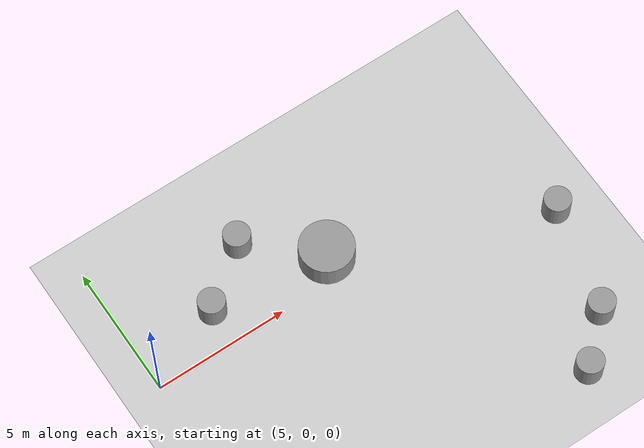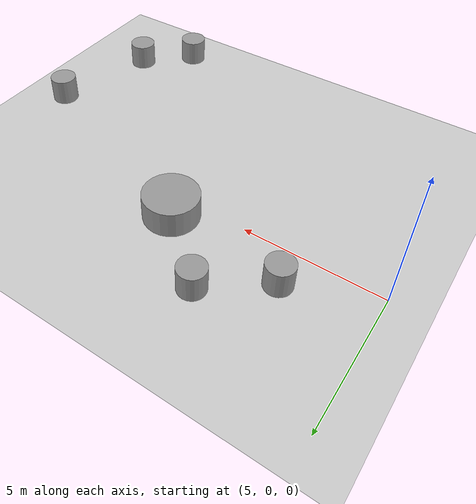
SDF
<sdf version="1.7">
 <world name="default">
  <model name="ground_plane">
   <static>1</static>
   <link name="link">
    <collision name="collision">
     <geometry><plane><normal>0 0 1</normal><size>100 100</size></plane></geometry>
     <surface><friction><ode><mu>100</mu><mu2>50</mu2></ode></friction></surface>
    </collision>
    <visual name="visual">
     <cast_shadows>0</cast_shadows>
     <geometry><plane><normal>0 0 1</normal><size>100 100</size></plane></geometry>
     <material>
      <script><uri>file://media/materials/scripts/gazebo.material</uri><name>Gazebo/Grey</name></script>
     </material>
    </visual>
   </link>
  </model>
  <model name="unit_cylinder_1_clone">
   <pose>7.99378 1.35198 0.499997 3e-06 2e-06 0</pose>
   <link name="link">
    <inertial>
     <mass>1</mass>
     <inertia><ixx>0.145833</ixx><ixy>0</ixy><ixz>0</ixz><iyy>0.145833</iyy><iyz>0</iyz><izz>0.125</izz></inertia>
    </inertial>
    <collision name="collision">
     <geometry><cylinder><radius>0.5</radius><length>1</length></cylinder></geometry>
    </collision>
    <visual name="visual">
     <geometry><cylinder><radius>0.5</radius><length>1</length></cylinder></geometry>
     <material>
      <script><name>Gazebo/Grey</name><uri>file://media/materials/scripts/gazebo.material</uri></script>
     </material>
    </visual>
   </link>
  </model>
  <model name="unit_cylinder_1m">
   <link name="link">
    <inertial>
     <mass>1</mass>
     <inertia><ixx>0.145833</ixx><ixy>0</ixy><ixz>0</ixz><iyy>0.145833</iyy><iyz>0</iyz><izz>0.125</izz></inertia>
    </inertial>
    <visual name="visual">
     <geometry><cylinder><radius>1</radius><length>1</length></cylinder></geometry>
     <material>
      <script><name>Gazebo/Grey</name><uri>file://media/materials/scripts/gazebo.material</uri></script>
      <shader type="pixel"><normal_map>__default__</normal_map></shader>
      <ambient>0.3 0.3 0.3 1</ambient>
      <diffuse>0.7 0.7 0.7 1</diffuse>
      <specular>0.01 0.01 0.01 1</specular>
      <emissive>0 0 0 1</emissive>
     </material>
    </visual>
    <collision name="collision">
     <geometry><cylinder><radius>1</radius><length>1</length></cylinder></geometry>
     <surface>
      <friction>
       <ode><mu>1</mu><mu2>1</mu2><fdir1>0 0 0</fdir1><slip1>0</slip1><slip2>0</slip2></ode>
       <torsional>
        <coefficient>1</coefficient>
        <patch_radius>0</patch_radius>
        <surface_radius>0</surface_radius>
        <use_patch_radius>1</use_patch_radius>
        <ode><slip>0</slip></ode>
       </torsional>
      </friction>
      <bounce><restitution_coefficient>0</restitution_coefficient><threshold>1e+06</threshold></bounce>
      <contact>
       <collide_without_contact>0</collide_without_contact>
       <collide_without_contact_bitmask>1</collide_without_contact_bitmask>
       <collide_bitmask>1</collide_bitmask>
       <ode>
        <soft_cfm>0</soft_cfm>
        <soft_erp>0.2</soft_erp>
        <kp>1e+13</kp>
        <kd>1</kd>
        <max_vel>0.01</max_vel>
        <min_depth>0</min_depth>
       </ode>
       <bullet>
        <split_impulse>1</split_impulse>
        <split_impulse_penetration_threshold>-0.01</split_impulse_penetration_threshold>
        <soft_cfm>0</soft_cfm>
        <soft_erp>0.2</soft_erp>
        <kp>1e+13</kp>
        <kd>1</kd>
       </bullet>
      </contact>
     </surface>
    </collision>
   </link>
   <static>0</static>
   <pose>12.3834 0.825384 0.499994 6e-06 -6e-06 0.000132</pose>
  </model>
  <model name="unit_cylinder_2">
   <pose>17.366 -7.68236 0.499998 3e-06 4e-06 -0</pose>
   <link name="link">
    <inertial>
     <mass>1</mass>
     <inertia><ixx>0.145833</ixx><ixy>0</ixy><ixz>0</ixz><iyy>0.145833</iyy><iyz>0</iyz><izz>0.125</izz></inertia>
    </inertial>
    <collision name="collision">
     <geometry><cylinder><radius>0.5</radius><length>1</length></cylinder></geometry>
    </collision>
    <visual name="visual">
     <geometry><cylinder><radius>0.5</radius><length>1</length></cylinder></geometry>
     <material>
      <script><name>Gazebo/Grey</name><uri>file://media/materials/scripts/gazebo.material</uri></script>
     </material>
    </visual>
   </link>
  </model>
  <model name="unit_cylinder_7">
   <pose>18.9923 -6.14712 0.499997 3e-06 3e-06 0</pose>
   <link name="link">
    <inertial>
     <mass>1</mass>
     <inertia><ixx>0.145833</ixx><ixy>0</ixy><ixz>0</ixz><iyy>0.145833</iyy><iyz>0</iyz><izz>0.125</izz></inertia>
    </inertial>
    <collision name="collision">
     <geometry><cylinder><radius>0.5</radius><length>1</length></cylinder></geometry>
    </collision>
    <visual name="visual">
     <geometry><cylinder><radius>0.5</radius><length>1</length></cylinder></geometry>
     <material>
      <script><name>Gazebo/Grey</name><uri>file://media/materials/scripts/gazebo.material</uri></script>
     </material>
    </visual>
   </link>
  </model>
  <model name="unit_cylinder_8">
   <pose>10.0742 2.95774 0.499997 3e-06 -2e-06 0</pose>
   <link name="link">
    <inertial>
     <mass>1</mass>
     <inertia><ixx>0.145833</ixx><ixy>0</ixy><ixz>0</ixz><iyy>0.145833</iyy><iyz>0</iyz><izz>0.125</izz></inertia>
    </inertial>
    <collision name="collision">
     <geometry><cylinder><radius>0.5</radius><length>1</length></cylinder></geometry>
    </collision>
    <visual name="visual">
     <geometry><cylinder><radius>0.5</radius><length>1</length></cylinder></geometry>
     <material>
      <script><name>Gazebo/Grey</name><uri>file://media/materials/scripts/gazebo.material</uri></script>
     </material>
    </visual>
   </link>
  </model>
  <model name="unit_cylinder_14">
   <pose>20.0224 -2.2012 0.499993 -3e-06 3e-06 0</pose>
   <link name="link">
    <inertial>
     <mass>1</mass>
     <inertia><ixx>0.145833</ixx><ixy>0</ixy><ixz>0</ixz><iyy>0.145833</iyy><iyz>0</iyz><izz>0.125</izz></inertia>
    </inertial>
    <collision name="collision">
     <geometry><cylinder><radius>0.5</radius><length>1</length></cylinder></geometry>
    </collision>
    <visual name="visual">
     <geometry><cylinder><radius>0.5</radius><length>1</length></cylinder></geometry>
     <material>
      <script><name>Gazebo/Grey</name><uri>file://media/materials/scripts/gazebo.material</uri></script>
     </material>
    </visual>
   </link>
  </model>
 </world>
</sdf>
